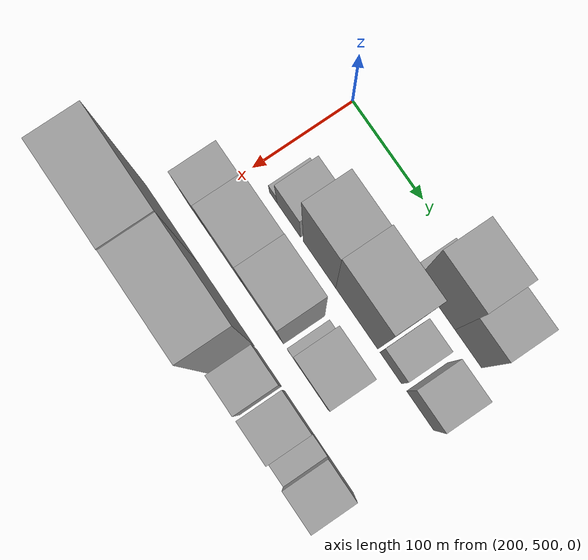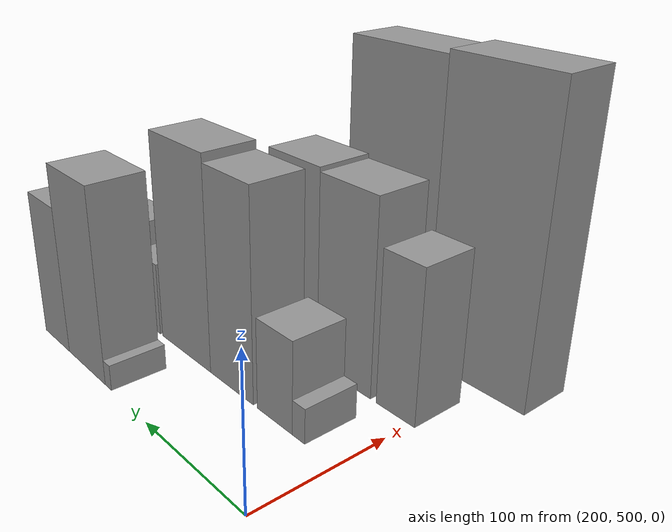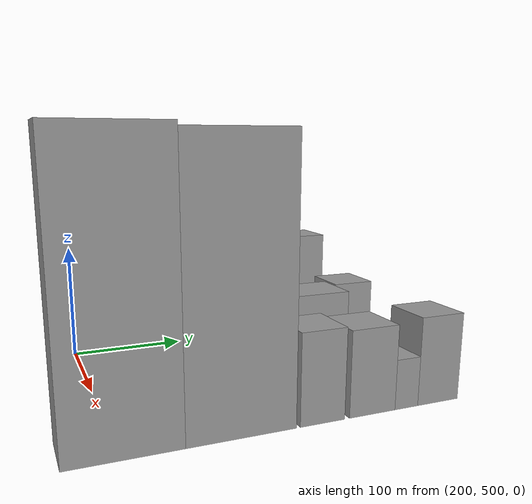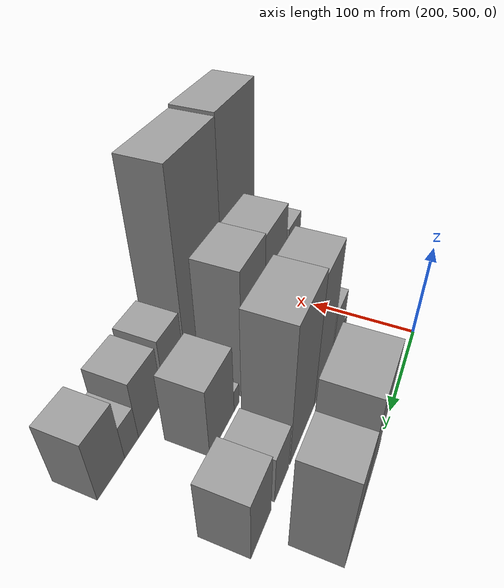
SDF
<sdf version="1.6">
 <world name="default">
  <model name="building_149">
   <static>1</static>
   <pose>220.0000 646.6176 0 0.000000 0.000000 0.000000</pose>
   <link name="link">
    <pose>0 0 9.00 0 0 0</pose>
    <collision name="collision"><geometry><box><size>40.0000 8.1757 18.0000</size></box></geometry></collision>
    <visual name="visual">
     <cast_shadows>0</cast_shadows>
     <geometry><box><size>40.0000 8.1757 18.0000</size></box></geometry>
     <material>
      <script>
       <uri>model://grey_wall/materials/scripts</uri>
       <uri>model://grey_wall/materials/textures</uri>
       <name>vrc/grey_wall</name>
      </script>
     </material>
    </visual>
   </link>
  </model>
  <model name="building_150">
   <static>1</static>
   <pose>220.0000 676.2744 0 0.000000 0.000000 0.000000</pose>
   <link name="link">
    <pose>0 0 67.50 0 0 0</pose>
    <collision name="collision"><geometry><box><size>40.0000 51.1379 135.0000</size></box></geometry></collision>
    <visual name="visual">
     <cast_shadows>0</cast_shadows>
     <geometry><box><size>40.0000 51.1379 135.0000</size></box></geometry>
     <material>
      <script>
       <uri>model://grey_wall/materials/scripts</uri>
       <uri>model://grey_wall/materials/textures</uri>
       <name>vrc/grey_wall</name>
      </script>
     </material>
    </visual>
   </link>
  </model>
  <model name="building_151">
   <static>1</static>
   <pose>220.0000 720.2841 0 0.000000 0.000000 0.000000</pose>
   <link name="link">
    <pose>0 0 52.50 0 0 0</pose>
    <collision name="collision"><geometry><box><size>40.0000 36.8814 105.0000</size></box></geometry></collision>
    <visual name="visual">
     <cast_shadows>0</cast_shadows>
     <geometry><box><size>40.0000 36.8814 105.0000</size></box></geometry>
     <material>
      <script>
       <uri>model://grey_wall/materials/scripts</uri>
       <uri>model://grey_wall/materials/textures</uri>
       <name>vrc/grey_wall</name>
      </script>
     </material>
    </visual>
   </link>
  </model>
  <model name="building_199">
   <static>1</static>
   <pose>280.0000 530.6323 0 0.000000 0.000000 0.000000</pose>
   <link name="link">
    <pose>0 0 12.00 0 0 0</pose>
    <collision name="collision"><geometry><box><size>40.0000 11.1450 24.0000</size></box></geometry></collision>
    <visual name="visual">
     <cast_shadows>0</cast_shadows>
     <geometry><box><size>40.0000 11.1450 24.0000</size></box></geometry>
     <material>
      <script>
       <uri>model://grey_wall/materials/scripts</uri>
       <uri>model://grey_wall/materials/textures</uri>
       <name>vrc/grey_wall</name>
      </script>
     </material>
    </visual>
   </link>
  </model>
  <model name="building_200">
   <static>1</static>
   <pose>280.0000 553.0725 0 0.000000 0.000000 0.000000</pose>
   <link name="link">
    <pose>0 0 31.50 0 0 0</pose>
    <collision name="collision"><geometry><box><size>40.0000 33.7355 63.0000</size></box></geometry></collision>
    <visual name="visual">
     <cast_shadows>0</cast_shadows>
     <geometry><box><size>40.0000 33.7355 63.0000</size></box></geometry>
     <material>
      <script>
       <uri>model://grey_wall/materials/scripts</uri>
       <uri>model://grey_wall/materials/textures</uri>
       <name>vrc/grey_wall</name>
      </script>
     </material>
    </visual>
   </link>
  </model>
  <model name="building_201">
   <static>1</static>
   <pose>280.0000 597.0783 0 0.000000 0.000000 0.000000</pose>
   <link name="link">
    <pose>0 0 72.00 0 0 0</pose>
    <collision name="collision"><geometry><box><size>40.0000 46.2759 144.0000</size></box></geometry></collision>
    <visual name="visual">
     <cast_shadows>0</cast_shadows>
     <geometry><box><size>40.0000 46.2759 144.0000</size></box></geometry>
     <material>
      <script>
       <uri>model://grey_wall/materials/scripts</uri>
       <uri>model://grey_wall/materials/textures</uri>
       <name>vrc/grey_wall</name>
      </script>
     </material>
    </visual>
   </link>
  </model>
  <model name="building_202">
   <static>1</static>
   <pose>280.0000 649.9996 0 0.000000 0.000000 0.000000</pose>
   <link name="link">
    <pose>0 0 75.00 0 0 0</pose>
    <collision name="collision"><geometry><box><size>40.0000 59.5668 150.0000</size></box></geometry></collision>
    <visual name="visual">
     <cast_shadows>0</cast_shadows>
     <geometry><box><size>40.0000 59.5668 150.0000</size></box></geometry>
     <material>
      <script>
       <uri>model://grey_wall/materials/scripts</uri>
       <uri>model://grey_wall/materials/textures</uri>
       <name>vrc/grey_wall</name>
      </script>
     </material>
    </visual>
   </link>
  </model>
  <model name="building_203">
   <static>1</static>
   <pose>280.0000 697.8789 0 0.000000 0.000000 0.000000</pose>
   <link name="link">
    <pose>0 0 27.00 0 0 0</pose>
    <collision name="collision"><geometry><box><size>40.0000 30.1918 54.0000</size></box></geometry></collision>
    <visual name="visual">
     <cast_shadows>0</cast_shadows>
     <geometry><box><size>40.0000 30.1918 54.0000</size></box></geometry>
     <material>
      <script>
       <uri>model://grey_wall/materials/scripts</uri>
       <uri>model://grey_wall/materials/textures</uri>
       <name>vrc/grey_wall</name>
      </script>
     </material>
    </visual>
   </link>
  </model>
  <model name="building_204">
   <static>1</static>
   <pose>280.0000 738.6582 0 0.000000 0.000000 0.000000</pose>
   <link name="link">
    <pose>0 0 34.50 0 0 0</pose>
    <collision name="collision"><geometry><box><size>40.0000 37.3668 69.0000</size></box></geometry></collision>
    <visual name="visual">
     <cast_shadows>0</cast_shadows>
     <geometry><box><size>40.0000 37.3668 69.0000</size></box></geometry>
     <material>
      <script>
       <uri>model://grey_wall/materials/scripts</uri>
       <uri>model://grey_wall/materials/textures</uri>
       <name>vrc/grey_wall</name>
      </script>
     </material>
    </visual>
   </link>
  </model>
  <model name="building_250">
   <static>1</static>
   <pose>340.0000 512.1878 0 0.000000 0.000000 0.000000</pose>
   <link name="link">
    <pose>0 0 52.50 0 0 0</pose>
    <collision name="collision"><geometry><box><size>40.0000 32.2884 105.0000</size></box></geometry></collision>
    <visual name="visual">
     <cast_shadows>0</cast_shadows>
     <geometry><box><size>40.0000 32.2884 105.0000</size></box></geometry>
     <material>
      <script>
       <uri>model://grey_wall/materials/scripts</uri>
       <uri>model://grey_wall/materials/textures</uri>
       <name>vrc/grey_wall</name>
      </script>
     </material>
    </visual>
   </link>
  </model>
  <model name="building_251">
   <static>1</static>
   <pose>340.0000 558.5332 0 0.000000 0.000000 0.000000</pose>
   <link name="link">
    <pose>0 0 67.50 0 0 0</pose>
    <collision name="collision"><geometry><box><size>40.0000 50.4024 135.0000</size></box></geometry></collision>
    <visual name="visual">
     <cast_shadows>0</cast_shadows>
     <geometry><box><size>40.0000 50.4024 135.0000</size></box></geometry>
     <material>
      <script>
       <uri>model://grey_wall/materials/scripts</uri>
       <uri>model://grey_wall/materials/textures</uri>
       <name>vrc/grey_wall</name>
      </script>
     </material>
    </visual>
   </link>
  </model>
  <model name="building_252">
   <static>1</static>
   <pose>340.0000 608.8354 0 0.000000 0.000000 0.000000</pose>
   <link name="link">
    <pose>0 0 69.00 0 0 0</pose>
    <collision name="collision"><geometry><box><size>40.0000 50.2020 138.0000</size></box></geometry></collision>
    <visual name="visual">
     <cast_shadows>0</cast_shadows>
     <geometry><box><size>40.0000 50.2020 138.0000</size></box></geometry>
     <material>
      <script>
       <uri>model://grey_wall/materials/scripts</uri>
       <uri>model://grey_wall/materials/textures</uri>
       <name>vrc/grey_wall</name>
      </script>
     </material>
    </visual>
   </link>
  </model>
  <model name="building_253">
   <static>1</static>
   <pose>340.0000 645.3486 0 0.000000 0.000000 0.000000</pose>
   <link name="link">
    <pose>0 0 12.00 0 0 0</pose>
    <collision name="collision"><geometry><box><size>40.0000 10.8243 24.0000</size></box></geometry></collision>
    <visual name="visual">
     <cast_shadows>0</cast_shadows>
     <geometry><box><size>40.0000 10.8243 24.0000</size></box></geometry>
     <material>
      <script>
       <uri>model://grey_wall/materials/scripts</uri>
       <uri>model://grey_wall/materials/textures</uri>
       <name>vrc/grey_wall</name>
      </script>
     </material>
    </visual>
   </link>
  </model>
  <model name="building_254">
   <static>1</static>
   <pose>340.0000 673.9773 0 0.000000 0.000000 0.000000</pose>
   <link name="link">
    <pose>0 0 39.00 0 0 0</pose>
    <collision name="collision"><geometry><box><size>40.0000 46.4331 78.0000</size></box></geometry></collision>
    <visual name="visual">
     <cast_shadows>0</cast_shadows>
     <geometry><box><size>40.0000 46.4331 78.0000</size></box></geometry>
     <material>
      <script>
       <uri>model://grey_wall/materials/scripts</uri>
       <uri>model://grey_wall/materials/textures</uri>
       <name>vrc/grey_wall</name>
      </script>
     </material>
    </visual>
   </link>
  </model>
  <model name="building_300">
   <static>1</static>
   <pose>400.0000 502.6085 0 0.000000 0.000000 0.000000</pose>
   <link name="link">
    <pose>0 0 103.50 0 0 0</pose>
    <collision name="collision"><geometry><box><size>40.0000 79.2877 207.0000</size></box></geometry></collision>
    <visual name="visual">
     <cast_shadows>0</cast_shadows>
     <geometry><box><size>40.0000 79.2877 207.0000</size></box></geometry>
     <material>
      <script>
       <uri>model://grey_wall/materials/scripts</uri>
       <uri>model://grey_wall/materials/textures</uri>
       <name>vrc/grey_wall</name>
      </script>
     </material>
    </visual>
   </link>
  </model>
  <model name="building_301">
   <static>1</static>
   <pose>400.0000 582.2940 0 0.000000 0.000000 0.000000</pose>
   <link name="link">
    <pose>0 0 102.00 0 0 0</pose>
    <collision name="collision"><geometry><box><size>40.0000 80.0833 204.0000</size></box></geometry></collision>
    <visual name="visual">
     <cast_shadows>0</cast_shadows>
     <geometry><box><size>40.0000 80.0833 204.0000</size></box></geometry>
     <material>
      <script>
       <uri>model://grey_wall/materials/scripts</uri>
       <uri>model://grey_wall/materials/textures</uri>
       <name>vrc/grey_wall</name>
      </script>
     </material>
    </visual>
   </link>
  </model>
  <model name="building_302">
   <static>1</static>
   <pose>400.0000 643.1493 0 0.000000 0.000000 0.000000</pose>
   <link name="link">
    <pose>0 0 34.50 0 0 0</pose>
    <collision name="collision"><geometry><box><size>40.0000 35.6273 69.0000</size></box></geometry></collision>
    <visual name="visual">
     <cast_shadows>0</cast_shadows>
     <geometry><box><size>40.0000 35.6273 69.0000</size></box></geometry>
     <material>
      <script>
       <uri>model://grey_wall/materials/scripts</uri>
       <uri>model://grey_wall/materials/textures</uri>
       <name>vrc/grey_wall</name>
      </script>
     </material>
    </visual>
   </link>
  </model>
  <model name="building_303">
   <static>1</static>
   <pose>400.0000 684.4222 0 0.000000 0.000000 0.000000</pose>
   <link name="link">
    <pose>0 0 33.00 0 0 0</pose>
    <collision name="collision"><geometry><box><size>40.0000 38.9183 66.0000</size></box></geometry></collision>
    <visual name="visual">
     <cast_shadows>0</cast_shadows>
     <geometry><box><size>40.0000 38.9183 66.0000</size></box></geometry>
     <material>
      <script>
       <uri>model://grey_wall/materials/scripts</uri>
       <uri>model://grey_wall/materials/textures</uri>
       <name>vrc/grey_wall</name>
      </script>
     </material>
    </visual>
   </link>
  </model>
  <model name="building_304">
   <static>1</static>
   <pose>400.0000 714.1056 0 0.000000 0.000000 0.000000</pose>
   <link name="link">
    <pose>0 0 19.50 0 0 0</pose>
    <collision name="collision"><geometry><box><size>40.0000 20.4485 39.0000</size></box></geometry></collision>
    <visual name="visual">
     <cast_shadows>0</cast_shadows>
     <geometry><box><size>40.0000 20.4485 39.0000</size></box></geometry>
     <material>
      <script>
       <uri>model://grey_wall/materials/scripts</uri>
       <uri>model://grey_wall/materials/textures</uri>
       <name>vrc/grey_wall</name>
      </script>
     </material>
    </visual>
   </link>
  </model>
  <model name="building_305">
   <static>1</static>
   <pose>400.0000 742.8752 0 0.000000 0.000000 0.000000</pose>
   <link name="link">
    <pose>0 0 34.50 0 0 0</pose>
    <collision name="collision"><geometry><box><size>40.0000 37.0908 69.0000</size></box></geometry></collision>
    <visual name="visual">
     <cast_shadows>0</cast_shadows>
     <geometry><box><size>40.0000 37.0908 69.0000</size></box></geometry>
     <material>
      <script>
       <uri>model://grey_wall/materials/scripts</uri>
       <uri>model://grey_wall/materials/textures</uri>
       <name>vrc/grey_wall</name>
      </script>
     </material>
    </visual>
   </link>
  </model>
 </world>
</sdf>
